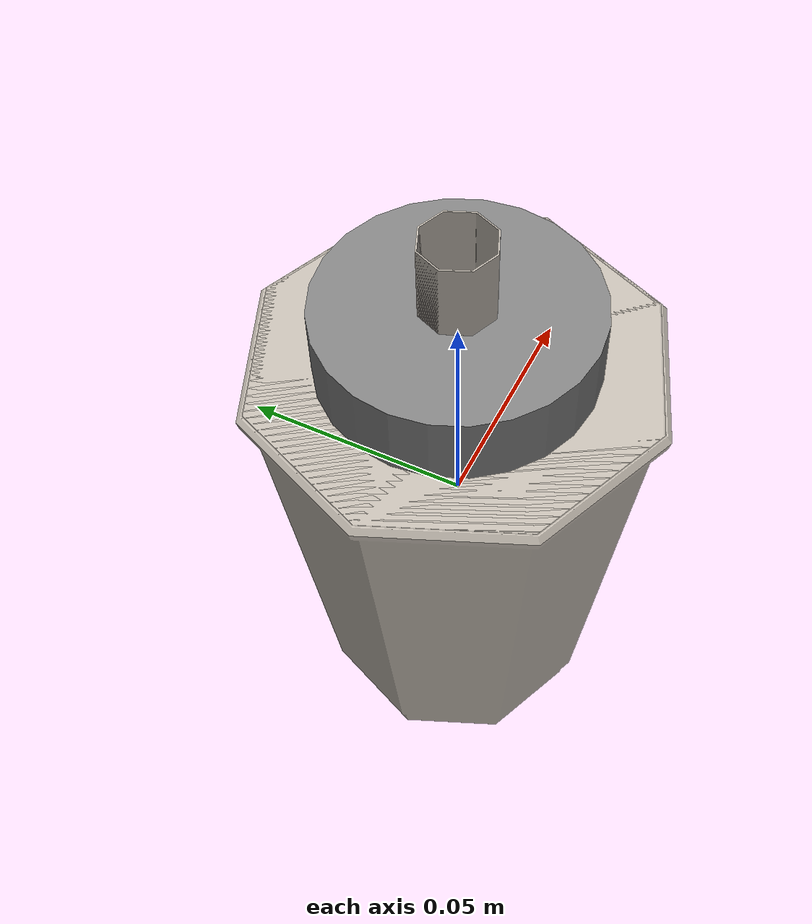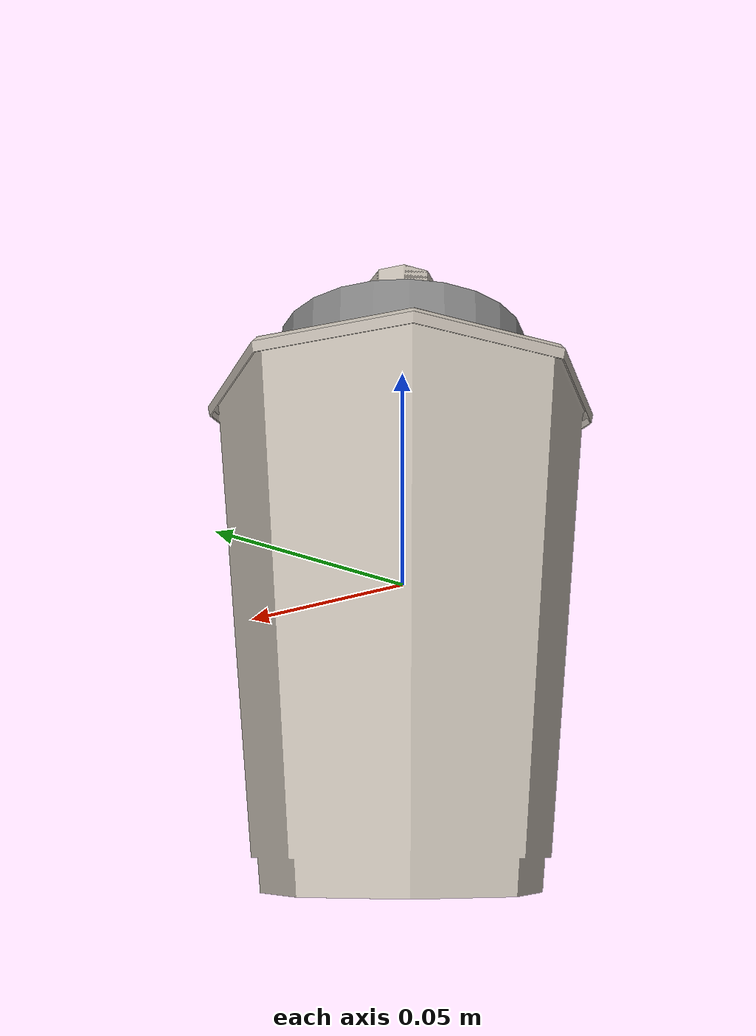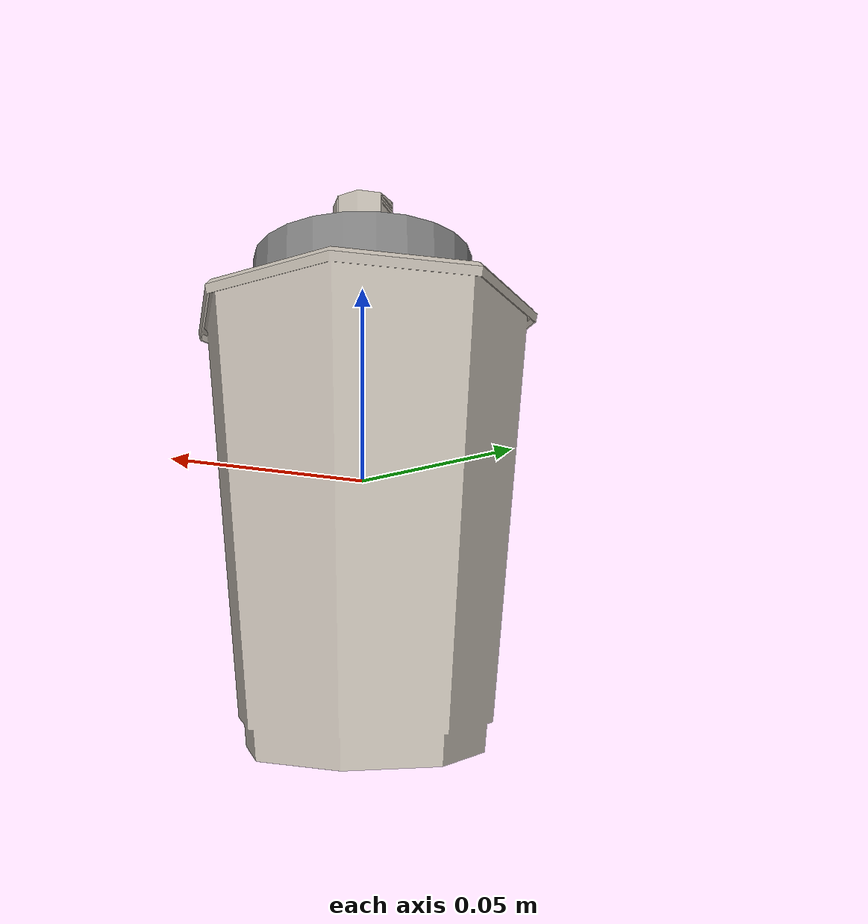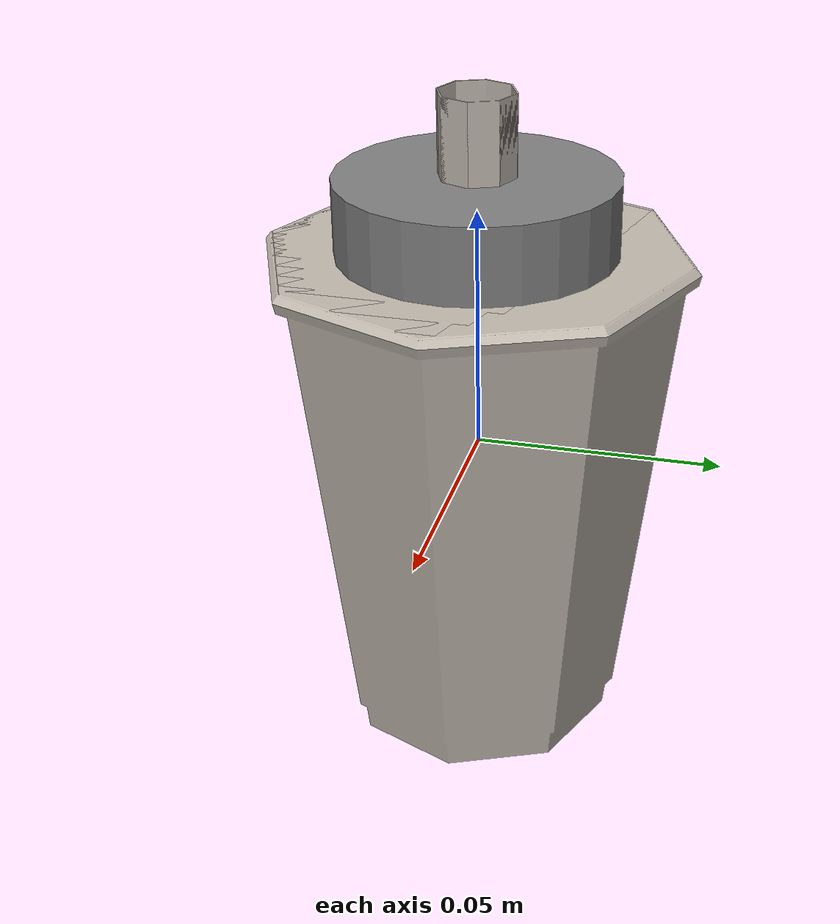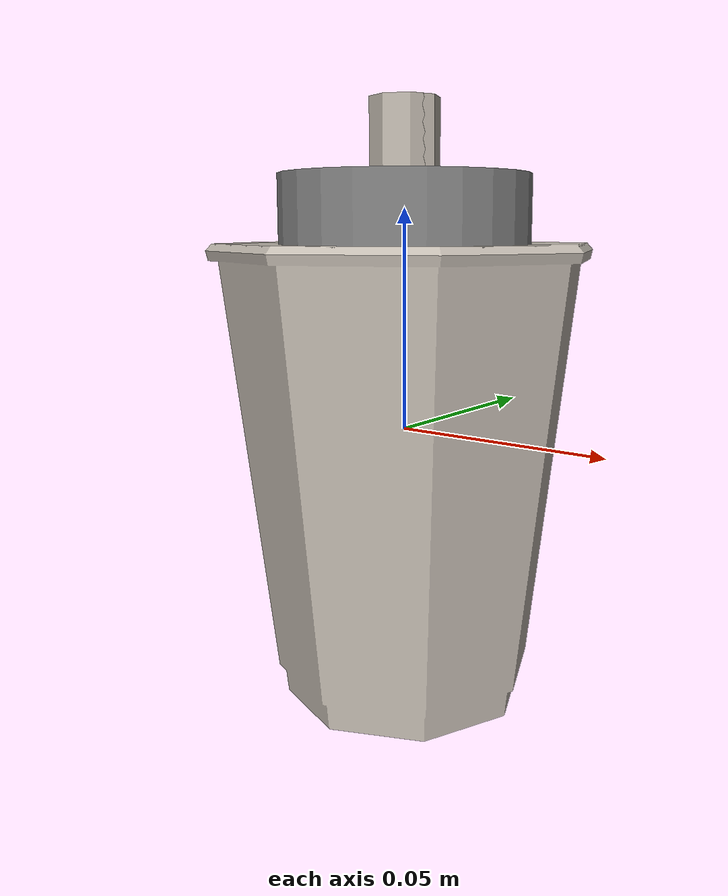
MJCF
<mujoco model="50_cup">
  <asset>
    <mesh name="fifty_cup_visual" file="50blue_paper.obj" scale="0.89 0.89 0.89"/>
    <mesh name="fifty_cup_lid_visual" file="50blue_lid.obj" scale="0.89 0.89 0.89"/>
    <mesh name="fifty_cup_straw_visual" file="50blue_straw.obj" scale="0.89 0.89 0.89"/>
    <texture name="fifty_cup_tex" file="50.png" type="2d"/>
    <material name="fifty_cup_mat" texture="fifty_cup_tex" reflectance="0.5" texrepeat="1 1" texuniform="false"/>
  </asset>
  <worldbody>
    <body>
      <body name="object">
        <inertial pos="0 0 0.002326" mass="0.35" diaginertia="0.000776 0.000776 0.000253"/>
        <geom
          type="mesh"
          mesh="fifty_cup_visual"
          material="fifty_cup_mat"
          group="1"
          contype="0"
          conaffinity="0"
        />
        <geom
          type="mesh"
          mesh="fifty_cup_lid_visual"
          material="fifty_cup_mat"
          group="1"
          contype="0"
          conaffinity="0"
        />
        <geom
          type="mesh"
          mesh="fifty_cup_straw_visual"
          material="fifty_cup_mat"
          group="1"
          contype="0"
          conaffinity="0"
        />
        <geom
          type="cylinder"
          size="0.028 0.055"
          pos="0 0 0.002326"
          group="0"
          solimp="0.998 0.998 0.001"
          solref="0.001 1"
        />
      </body>
      <site rgba="0 0 0 0" size="0.005" pos="0 0 -0.072297" name="bottom_site"/>
      <site rgba="0 0 0 0" size="0.005" pos="0 0 0.076949" name="top_site"/>
      <site rgba="0 0 0 0" size="0.005" pos="0.038 0 0.002326" name="horizontal_radius_site"/>
    </body>
  </worldbody>
</mujoco>
